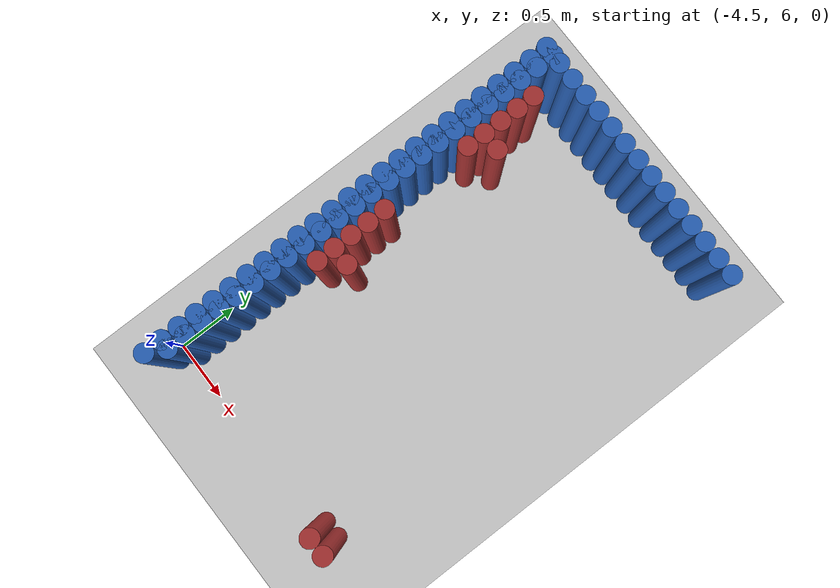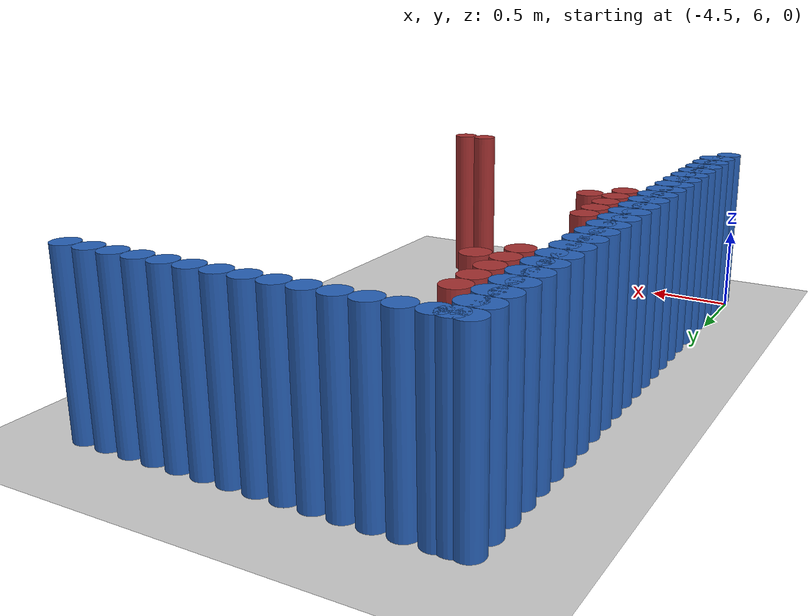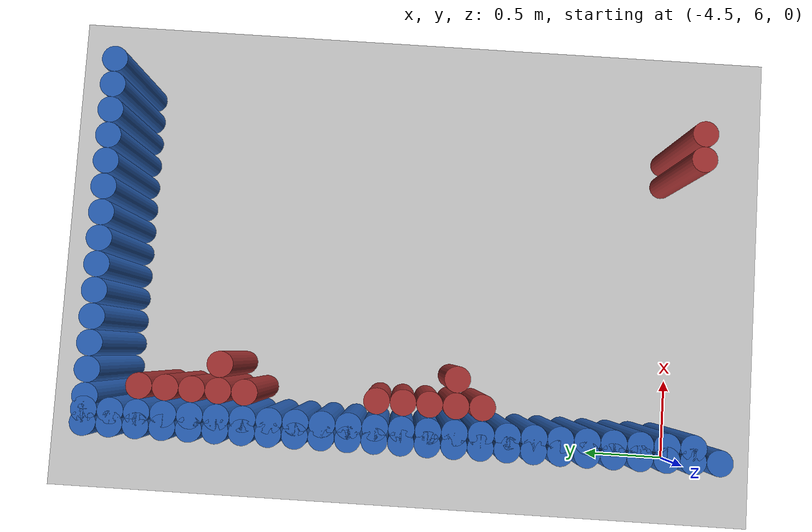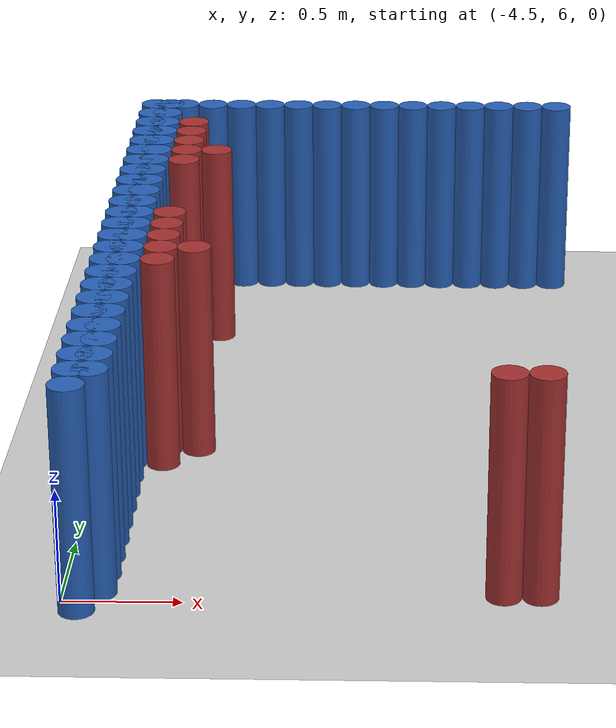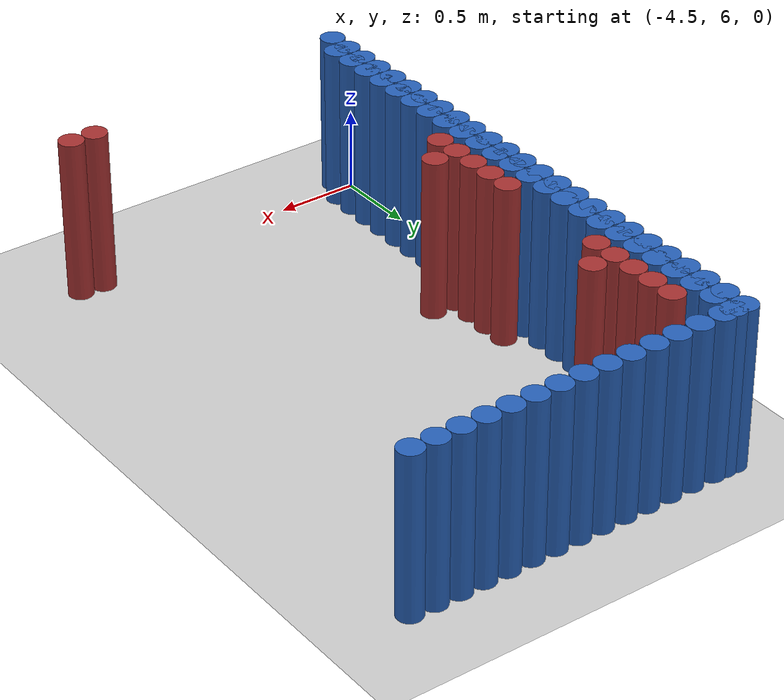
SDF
<sdf version="1.6">
 <world name="barn_world">
  <model name="ground_plane">
   <static>1</static>
   <link name="link">
    <collision name="collision">
     <geometry><plane><normal>0 0 1</normal><size>100 100</size></plane></geometry>
    </collision>
    <visual name="visual">
     <geometry><plane><normal>0 0 1</normal><size>100 100</size></plane></geometry>
     <material>
      <script><uri>file://media/materials/scripts/gazebo.material</uri><name>Gazebo/Grey</name></script>
     </material>
    </visual>
   </link>
  </model>
  <model name="unit_cylinder_132">
   <static>1</static>
   <pose>-4.3500 6.0750 0.5 0 0 0</pose>
   <link name="link">
    <collision name="collision">
     <geometry><cylinder><radius>0.075</radius><length>1</length></cylinder></geometry>
    </collision>
    <visual name="visual">
     <geometry><cylinder><radius>0.075</radius><length>1</length></cylinder></geometry>
     <material><ambient>0.152 0.379 0.72 1</ambient><diffuse>0.152 0.379 0.72 1</diffuse></material>
    </visual>
   </link>
  </model>
  <model name="unit_cylinder_133">
   <static>1</static>
   <pose>-4.3500 6.2250 0.5 0 0 0</pose>
   <link name="link">
    <collision name="collision">
     <geometry><cylinder><radius>0.075</radius><length>1</length></cylinder></geometry>
    </collision>
    <visual name="visual">
     <geometry><cylinder><radius>0.075</radius><length>1</length></cylinder></geometry>
     <material><ambient>0.152 0.379 0.72 1</ambient><diffuse>0.152 0.379 0.72 1</diffuse></material>
    </visual>
   </link>
  </model>
  <model name="unit_cylinder_134">
   <static>1</static>
   <pose>-4.3500 6.3750 0.5 0 0 0</pose>
   <link name="link">
    <collision name="collision">
     <geometry><cylinder><radius>0.075</radius><length>1</length></cylinder></geometry>
    </collision>
    <visual name="visual">
     <geometry><cylinder><radius>0.075</radius><length>1</length></cylinder></geometry>
     <material><ambient>0.152 0.379 0.72 1</ambient><diffuse>0.152 0.379 0.72 1</diffuse></material>
    </visual>
   </link>
  </model>
  <model name="unit_cylinder_135">
   <static>1</static>
   <pose>-4.3500 6.5250 0.5 0 0 0</pose>
   <link name="link">
    <collision name="collision">
     <geometry><cylinder><radius>0.075</radius><length>1</length></cylinder></geometry>
    </collision>
    <visual name="visual">
     <geometry><cylinder><radius>0.075</radius><length>1</length></cylinder></geometry>
     <material><ambient>0.152 0.379 0.72 1</ambient><diffuse>0.152 0.379 0.72 1</diffuse></material>
    </visual>
   </link>
  </model>
  <model name="unit_cylinder_136">
   <static>1</static>
   <pose>-4.3500 6.6750 0.5 0 0 0</pose>
   <link name="link">
    <collision name="collision">
     <geometry><cylinder><radius>0.075</radius><length>1</length></cylinder></geometry>
    </collision>
    <visual name="visual">
     <geometry><cylinder><radius>0.075</radius><length>1</length></cylinder></geometry>
     <material><ambient>0.152 0.379 0.72 1</ambient><diffuse>0.152 0.379 0.72 1</diffuse></material>
    </visual>
   </link>
  </model>
  <model name="unit_cylinder_137">
   <static>1</static>
   <pose>-4.3500 6.8250 0.5 0 0 0</pose>
   <link name="link">
    <collision name="collision">
     <geometry><cylinder><radius>0.075</radius><length>1</length></cylinder></geometry>
    </collision>
    <visual name="visual">
     <geometry><cylinder><radius>0.075</radius><length>1</length></cylinder></geometry>
     <material><ambient>0.152 0.379 0.72 1</ambient><diffuse>0.152 0.379 0.72 1</diffuse></material>
    </visual>
   </link>
  </model>
  <model name="unit_cylinder_138">
   <static>1</static>
   <pose>-4.3500 6.9750 0.5 0 0 0</pose>
   <link name="link">
    <collision name="collision">
     <geometry><cylinder><radius>0.075</radius><length>1</length></cylinder></geometry>
    </collision>
    <visual name="visual">
     <geometry><cylinder><radius>0.075</radius><length>1</length></cylinder></geometry>
     <material><ambient>0.152 0.379 0.72 1</ambient><diffuse>0.152 0.379 0.72 1</diffuse></material>
    </visual>
   </link>
  </model>
  <model name="unit_cylinder_139">
   <static>1</static>
   <pose>-4.3500 7.1250 0.5 0 0 0</pose>
   <link name="link">
    <collision name="collision">
     <geometry><cylinder><radius>0.075</radius><length>1</length></cylinder></geometry>
    </collision>
    <visual name="visual">
     <geometry><cylinder><radius>0.075</radius><length>1</length></cylinder></geometry>
     <material><ambient>0.152 0.379 0.72 1</ambient><diffuse>0.152 0.379 0.72 1</diffuse></material>
    </visual>
   </link>
  </model>
  <model name="unit_cylinder_140">
   <static>1</static>
   <pose>-4.3500 7.2750 0.5 0 0 0</pose>
   <link name="link">
    <collision name="collision">
     <geometry><cylinder><radius>0.075</radius><length>1</length></cylinder></geometry>
    </collision>
    <visual name="visual">
     <geometry><cylinder><radius>0.075</radius><length>1</length></cylinder></geometry>
     <material><ambient>0.152 0.379 0.72 1</ambient><diffuse>0.152 0.379 0.72 1</diffuse></material>
    </visual>
   </link>
  </model>
  <model name="unit_cylinder_141">
   <static>1</static>
   <pose>-4.3500 7.4250 0.5 0 0 0</pose>
   <link name="link">
    <collision name="collision">
     <geometry><cylinder><radius>0.075</radius><length>1</length></cylinder></geometry>
    </collision>
    <visual name="visual">
     <geometry><cylinder><radius>0.075</radius><length>1</length></cylinder></geometry>
     <material><ambient>0.152 0.379 0.72 1</ambient><diffuse>0.152 0.379 0.72 1</diffuse></material>
    </visual>
   </link>
  </model>
  <model name="unit_cylinder_142">
   <static>1</static>
   <pose>-4.3500 7.5750 0.5 0 0 0</pose>
   <link name="link">
    <collision name="collision">
     <geometry><cylinder><radius>0.075</radius><length>1</length></cylinder></geometry>
    </collision>
    <visual name="visual">
     <geometry><cylinder><radius>0.075</radius><length>1</length></cylinder></geometry>
     <material><ambient>0.152 0.379 0.72 1</ambient><diffuse>0.152 0.379 0.72 1</diffuse></material>
    </visual>
   </link>
  </model>
  <model name="unit_cylinder_143">
   <static>1</static>
   <pose>-4.3500 7.7250 0.5 0 0 0</pose>
   <link name="link">
    <collision name="collision">
     <geometry><cylinder><radius>0.075</radius><length>1</length></cylinder></geometry>
    </collision>
    <visual name="visual">
     <geometry><cylinder><radius>0.075</radius><length>1</length></cylinder></geometry>
     <material><ambient>0.152 0.379 0.72 1</ambient><diffuse>0.152 0.379 0.72 1</diffuse></material>
    </visual>
   </link>
  </model>
  <model name="unit_cylinder_144">
   <static>1</static>
   <pose>-4.3500 7.8750 0.5 0 0 0</pose>
   <link name="link">
    <collision name="collision">
     <geometry><cylinder><radius>0.075</radius><length>1</length></cylinder></geometry>
    </collision>
    <visual name="visual">
     <geometry><cylinder><radius>0.075</radius><length>1</length></cylinder></geometry>
     <material><ambient>0.152 0.379 0.72 1</ambient><diffuse>0.152 0.379 0.72 1</diffuse></material>
    </visual>
   </link>
  </model>
  <model name="unit_cylinder_145">
   <static>1</static>
   <pose>-4.3500 8.0250 0.5 0 0 0</pose>
   <link name="link">
    <collision name="collision">
     <geometry><cylinder><radius>0.075</radius><length>1</length></cylinder></geometry>
    </collision>
    <visual name="visual">
     <geometry><cylinder><radius>0.075</radius><length>1</length></cylinder></geometry>
     <material><ambient>0.152 0.379 0.72 1</ambient><diffuse>0.152 0.379 0.72 1</diffuse></material>
    </visual>
   </link>
  </model>
  <model name="unit_cylinder_146">
   <static>1</static>
   <pose>-4.3500 8.1750 0.5 0 0 0</pose>
   <link name="link">
    <collision name="collision">
     <geometry><cylinder><radius>0.075</radius><length>1</length></cylinder></geometry>
    </collision>
    <visual name="visual">
     <geometry><cylinder><radius>0.075</radius><length>1</length></cylinder></geometry>
     <material><ambient>0.152 0.379 0.72 1</ambient><diffuse>0.152 0.379 0.72 1</diffuse></material>
    </visual>
   </link>
  </model>
  <model name="unit_cylinder_147">
   <static>1</static>
   <pose>-4.3500 8.3250 0.5 0 0 0</pose>
   <link name="link">
    <collision name="collision">
     <geometry><cylinder><radius>0.075</radius><length>1</length></cylinder></geometry>
    </collision>
    <visual name="visual">
     <geometry><cylinder><radius>0.075</radius><length>1</length></cylinder></geometry>
     <material><ambient>0.152 0.379 0.72 1</ambient><diffuse>0.152 0.379 0.72 1</diffuse></material>
    </visual>
   </link>
  </model>
  <model name="unit_cylinder_148">
   <static>1</static>
   <pose>-4.3500 8.4750 0.5 0 0 0</pose>
   <link name="link">
    <collision name="collision">
     <geometry><cylinder><radius>0.075</radius><length>1</length></cylinder></geometry>
    </collision>
    <visual name="visual">
     <geometry><cylinder><radius>0.075</radius><length>1</length></cylinder></geometry>
     <material><ambient>0.152 0.379 0.72 1</ambient><diffuse>0.152 0.379 0.72 1</diffuse></material>
    </visual>
   </link>
  </model>
  <model name="unit_cylinder_149">
   <static>1</static>
   <pose>-4.3500 8.6250 0.5 0 0 0</pose>
   <link name="link">
    <collision name="collision">
     <geometry><cylinder><radius>0.075</radius><length>1</length></cylinder></geometry>
    </collision>
    <visual name="visual">
     <geometry><cylinder><radius>0.075</radius><length>1</length></cylinder></geometry>
     <material><ambient>0.152 0.379 0.72 1</ambient><diffuse>0.152 0.379 0.72 1</diffuse></material>
    </visual>
   </link>
  </model>
  <model name="unit_cylinder_150">
   <static>1</static>
   <pose>-4.3500 8.7750 0.5 0 0 0</pose>
   <link name="link">
    <collision name="collision">
     <geometry><cylinder><radius>0.075</radius><length>1</length></cylinder></geometry>
    </collision>
    <visual name="visual">
     <geometry><cylinder><radius>0.075</radius><length>1</length></cylinder></geometry>
     <material><ambient>0.152 0.379 0.72 1</ambient><diffuse>0.152 0.379 0.72 1</diffuse></material>
    </visual>
   </link>
  </model>
  <model name="unit_cylinder_151">
   <static>1</static>
   <pose>-4.3500 8.9250 0.5 0 0 0</pose>
   <link name="link">
    <collision name="collision">
     <geometry><cylinder><radius>0.075</radius><length>1</length></cylinder></geometry>
    </collision>
    <visual name="visual">
     <geometry><cylinder><radius>0.075</radius><length>1</length></cylinder></geometry>
     <material><ambient>0.152 0.379 0.72 1</ambient><diffuse>0.152 0.379 0.72 1</diffuse></material>
    </visual>
   </link>
  </model>
  <model name="unit_cylinder_152">
   <static>1</static>
   <pose>-4.3500 9.0750 0.5 0 0 0</pose>
   <link name="link">
    <collision name="collision">
     <geometry><cylinder><radius>0.075</radius><length>1</length></cylinder></geometry>
    </collision>
    <visual name="visual">
     <geometry><cylinder><radius>0.075</radius><length>1</length></cylinder></geometry>
     <material><ambient>0.152 0.379 0.72 1</ambient><diffuse>0.152 0.379 0.72 1</diffuse></material>
    </visual>
   </link>
  </model>
  <model name="unit_cylinder_153">
   <static>1</static>
   <pose>-4.3500 9.2250 0.5 0 0 0</pose>
   <link name="link">
    <collision name="collision">
     <geometry><cylinder><radius>0.075</radius><length>1</length></cylinder></geometry>
    </collision>
    <visual name="visual">
     <geometry><cylinder><radius>0.075</radius><length>1</length></cylinder></geometry>
     <material><ambient>0.152 0.379 0.72 1</ambient><diffuse>0.152 0.379 0.72 1</diffuse></material>
    </visual>
   </link>
  </model>
  <model name="unit_cylinder_154">
   <static>1</static>
   <pose>-4.3500 9.3750 0.5 0 0 0</pose>
   <link name="link">
    <collision name="collision">
     <geometry><cylinder><radius>0.075</radius><length>1</length></cylinder></geometry>
    </collision>
    <visual name="visual">
     <geometry><cylinder><radius>0.075</radius><length>1</length></cylinder></geometry>
     <material><ambient>0.152 0.379 0.72 1</ambient><diffuse>0.152 0.379 0.72 1</diffuse></material>
    </visual>
   </link>
  </model>
  <model name="unit_cylinder_155">
   <static>1</static>
   <pose>-4.3500 9.5250 0.5 0 0 0</pose>
   <link name="link">
    <collision name="collision">
     <geometry><cylinder><radius>0.075</radius><length>1</length></cylinder></geometry>
    </collision>
    <visual name="visual">
     <geometry><cylinder><radius>0.075</radius><length>1</length></cylinder></geometry>
     <material><ambient>0.152 0.379 0.72 1</ambient><diffuse>0.152 0.379 0.72 1</diffuse></material>
    </visual>
   </link>
  </model>
  <model name="unit_cylinder_157">
   <static>1</static>
   <pose>-4.2000 7.2750 0.5 0 0 0</pose>
   <link name="link">
    <collision name="collision">
     <geometry><cylinder><radius>0.075</radius><length>1</length></cylinder></geometry>
    </collision>
    <visual name="visual">
     <geometry><cylinder><radius>0.075</radius><length>1</length></cylinder></geometry>
     <material><ambient>0.648 0.192 0.192 1</ambient><diffuse>0.648 0.192 0.192 1</diffuse></material>
    </visual>
   </link>
  </model>
  <model name="unit_cylinder_158">
   <static>1</static>
   <pose>-4.2000 7.4250 0.5 0 0 0</pose>
   <link name="link">
    <collision name="collision">
     <geometry><cylinder><radius>0.075</radius><length>1</length></cylinder></geometry>
    </collision>
    <visual name="visual">
     <geometry><cylinder><radius>0.075</radius><length>1</length></cylinder></geometry>
     <material><ambient>0.648 0.192 0.192 1</ambient><diffuse>0.648 0.192 0.192 1</diffuse></material>
    </visual>
   </link>
  </model>
  <model name="unit_cylinder_159">
   <static>1</static>
   <pose>-4.2000 7.5750 0.5 0 0 0</pose>
   <link name="link">
    <collision name="collision">
     <geometry><cylinder><radius>0.075</radius><length>1</length></cylinder></geometry>
    </collision>
    <visual name="visual">
     <geometry><cylinder><radius>0.075</radius><length>1</length></cylinder></geometry>
     <material><ambient>0.648 0.192 0.192 1</ambient><diffuse>0.648 0.192 0.192 1</diffuse></material>
    </visual>
   </link>
  </model>
  <model name="unit_cylinder_160">
   <static>1</static>
   <pose>-4.2000 7.7250 0.5 0 0 0</pose>
   <link name="link">
    <collision name="collision">
     <geometry><cylinder><radius>0.075</radius><length>1</length></cylinder></geometry>
    </collision>
    <visual name="visual">
     <geometry><cylinder><radius>0.075</radius><length>1</length></cylinder></geometry>
     <material><ambient>0.648 0.192 0.192 1</ambient><diffuse>0.648 0.192 0.192 1</diffuse></material>
    </visual>
   </link>
  </model>
  <model name="unit_cylinder_161">
   <static>1</static>
   <pose>-4.2000 7.8750 0.5 0 0 0</pose>
   <link name="link">
    <collision name="collision">
     <geometry><cylinder><radius>0.075</radius><length>1</length></cylinder></geometry>
    </collision>
    <visual name="visual">
     <geometry><cylinder><radius>0.075</radius><length>1</length></cylinder></geometry>
     <material><ambient>0.648 0.192 0.192 1</ambient><diffuse>0.648 0.192 0.192 1</diffuse></material>
    </visual>
   </link>
  </model>
  <model name="unit_cylinder_162">
   <static>1</static>
   <pose>-4.2000 8.6250 0.5 0 0 0</pose>
   <link name="link">
    <collision name="collision">
     <geometry><cylinder><radius>0.075</radius><length>1</length></cylinder></geometry>
    </collision>
    <visual name="visual">
     <geometry><cylinder><radius>0.075</radius><length>1</length></cylinder></geometry>
     <material><ambient>0.648 0.192 0.192 1</ambient><diffuse>0.648 0.192 0.192 1</diffuse></material>
    </visual>
   </link>
  </model>
  <model name="unit_cylinder_163">
   <static>1</static>
   <pose>-4.2000 8.7750 0.5 0 0 0</pose>
   <link name="link">
    <collision name="collision">
     <geometry><cylinder><radius>0.075</radius><length>1</length></cylinder></geometry>
    </collision>
    <visual name="visual">
     <geometry><cylinder><radius>0.075</radius><length>1</length></cylinder></geometry>
     <material><ambient>0.648 0.192 0.192 1</ambient><diffuse>0.648 0.192 0.192 1</diffuse></material>
    </visual>
   </link>
  </model>
  <model name="unit_cylinder_164">
   <static>1</static>
   <pose>-4.2000 8.9250 0.5 0 0 0</pose>
   <link name="link">
    <collision name="collision">
     <geometry><cylinder><radius>0.075</radius><length>1</length></cylinder></geometry>
    </collision>
    <visual name="visual">
     <geometry><cylinder><radius>0.075</radius><length>1</length></cylinder></geometry>
     <material><ambient>0.648 0.192 0.192 1</ambient><diffuse>0.648 0.192 0.192 1</diffuse></material>
    </visual>
   </link>
  </model>
  <model name="unit_cylinder_165">
   <static>1</static>
   <pose>-4.2000 9.0750 0.5 0 0 0</pose>
   <link name="link">
    <collision name="collision">
     <geometry><cylinder><radius>0.075</radius><length>1</length></cylinder></geometry>
    </collision>
    <visual name="visual">
     <geometry><cylinder><radius>0.075</radius><length>1</length></cylinder></geometry>
     <material><ambient>0.648 0.192 0.192 1</ambient><diffuse>0.648 0.192 0.192 1</diffuse></material>
    </visual>
   </link>
  </model>
  <model name="unit_cylinder_166">
   <static>1</static>
   <pose>-4.2000 9.2250 0.5 0 0 0</pose>
   <link name="link">
    <collision name="collision">
     <geometry><cylinder><radius>0.075</radius><length>1</length></cylinder></geometry>
    </collision>
    <visual name="visual">
     <geometry><cylinder><radius>0.075</radius><length>1</length></cylinder></geometry>
     <material><ambient>0.648 0.192 0.192 1</ambient><diffuse>0.648 0.192 0.192 1</diffuse></material>
    </visual>
   </link>
  </model>
  <model name="unit_cylinder_167">
   <static>1</static>
   <pose>-4.0500 7.4250 0.5 0 0 0</pose>
   <link name="link">
    <collision name="collision">
     <geometry><cylinder><radius>0.075</radius><length>1</length></cylinder></geometry>
    </collision>
    <visual name="visual">
     <geometry><cylinder><radius>0.075</radius><length>1</length></cylinder></geometry>
     <material><ambient>0.648 0.192 0.192 1</ambient><diffuse>0.648 0.192 0.192 1</diffuse></material>
    </visual>
   </link>
  </model>
  <model name="unit_cylinder_168">
   <static>1</static>
   <pose>-4.0500 8.7750 0.5 0 0 0</pose>
   <link name="link">
    <collision name="collision">
     <geometry><cylinder><radius>0.075</radius><length>1</length></cylinder></geometry>
    </collision>
    <visual name="visual">
     <geometry><cylinder><radius>0.075</radius><length>1</length></cylinder></geometry>
     <material><ambient>0.648 0.192 0.192 1</ambient><diffuse>0.648 0.192 0.192 1</diffuse></material>
    </visual>
   </link>
  </model>
  <model name="unit_cylinder_173">
   <static>1</static>
   <pose>-2.7000 6.0750 0.5 0 0 0</pose>
   <link name="link">
    <collision name="collision">
     <geometry><cylinder><radius>0.075</radius><length>1</length></cylinder></geometry>
    </collision>
    <visual name="visual">
     <geometry><cylinder><radius>0.075</radius><length>1</length></cylinder></geometry>
     <material><ambient>0.648 0.192 0.192 1</ambient><diffuse>0.648 0.192 0.192 1</diffuse></material>
    </visual>
   </link>
  </model>
  <model name="unit_cylinder_174">
   <static>1</static>
   <pose>-2.5500 6.0750 0.5 0 0 0</pose>
   <link name="link">
    <collision name="collision">
     <geometry><cylinder><radius>0.075</radius><length>1</length></cylinder></geometry>
    </collision>
    <visual name="visual">
     <geometry><cylinder><radius>0.075</radius><length>1</length></cylinder></geometry>
     <material><ambient>0.648 0.192 0.192 1</ambient><diffuse>0.648 0.192 0.192 1</diffuse></material>
    </visual>
   </link>
  </model>
  <model name="unit_cylinder_236">
   <static>1</static>
   <pose>-2.3250 9.5250 0.5 0 0 0</pose>
   <link name="link">
    <collision name="collision">
     <geometry><cylinder><radius>0.075</radius><length>1</length></cylinder></geometry>
    </collision>
    <visual name="visual">
     <geometry><cylinder><radius>0.075</radius><length>1</length></cylinder></geometry>
     <material><ambient>0.152 0.379 0.72 1</ambient><diffuse>0.152 0.379 0.72 1</diffuse></material>
    </visual>
   </link>
  </model>
  <model name="unit_cylinder_237">
   <static>1</static>
   <pose>-2.4750 9.5250 0.5 0 0 0</pose>
   <link name="link">
    <collision name="collision">
     <geometry><cylinder><radius>0.075</radius><length>1</length></cylinder></geometry>
    </collision>
    <visual name="visual">
     <geometry><cylinder><radius>0.075</radius><length>1</length></cylinder></geometry>
     <material><ambient>0.152 0.379 0.72 1</ambient><diffuse>0.152 0.379 0.72 1</diffuse></material>
    </visual>
   </link>
  </model>
  <model name="unit_cylinder_238">
   <static>1</static>
   <pose>-2.6250 9.5250 0.5 0 0 0</pose>
   <link name="link">
    <collision name="collision">
     <geometry><cylinder><radius>0.075</radius><length>1</length></cylinder></geometry>
    </collision>
    <visual name="visual">
     <geometry><cylinder><radius>0.075</radius><length>1</length></cylinder></geometry>
     <material><ambient>0.152 0.379 0.72 1</ambient><diffuse>0.152 0.379 0.72 1</diffuse></material>
    </visual>
   </link>
  </model>
  <model name="unit_cylinder_239">
   <static>1</static>
   <pose>-2.7750 9.5250 0.5 0 0 0</pose>
   <link name="link">
    <collision name="collision">
     <geometry><cylinder><radius>0.075</radius><length>1</length></cylinder></geometry>
    </collision>
    <visual name="visual">
     <geometry><cylinder><radius>0.075</radius><length>1</length></cylinder></geometry>
     <material><ambient>0.152 0.379 0.72 1</ambient><diffuse>0.152 0.379 0.72 1</diffuse></material>
    </visual>
   </link>
  </model>
  <model name="unit_cylinder_240">
   <static>1</static>
   <pose>-2.9250 9.5250 0.5 0 0 0</pose>
   <link name="link">
    <collision name="collision">
     <geometry><cylinder><radius>0.075</radius><length>1</length></cylinder></geometry>
    </collision>
    <visual name="visual">
     <geometry><cylinder><radius>0.075</radius><length>1</length></cylinder></geometry>
     <material><ambient>0.152 0.379 0.72 1</ambient><diffuse>0.152 0.379 0.72 1</diffuse></material>
    </visual>
   </link>
  </model>
  <model name="unit_cylinder_241">
   <static>1</static>
   <pose>-3.0750 9.5250 0.5 0 0 0</pose>
   <link name="link">
    <collision name="collision">
     <geometry><cylinder><radius>0.075</radius><length>1</length></cylinder></geometry>
    </collision>
    <visual name="visual">
     <geometry><cylinder><radius>0.075</radius><length>1</length></cylinder></geometry>
     <material><ambient>0.152 0.379 0.72 1</ambient><diffuse>0.152 0.379 0.72 1</diffuse></material>
    </visual>
   </link>
  </model>
  <model name="unit_cylinder_242">
   <static>1</static>
   <pose>-3.2250 9.5250 0.5 0 0 0</pose>
   <link name="link">
    <collision name="collision">
     <geometry><cylinder><radius>0.075</radius><length>1</length></cylinder></geometry>
    </collision>
    <visual name="visual">
     <geometry><cylinder><radius>0.075</radius><length>1</length></cylinder></geometry>
     <material><ambient>0.152 0.379 0.72 1</ambient><diffuse>0.152 0.379 0.72 1</diffuse></material>
    </visual>
   </link>
  </model>
  <model name="unit_cylinder_243">
   <static>1</static>
   <pose>-3.3750 9.5250 0.5 0 0 0</pose>
   <link name="link">
    <collision name="collision">
     <geometry><cylinder><radius>0.075</radius><length>1</length></cylinder></geometry>
    </collision>
    <visual name="visual">
     <geometry><cylinder><radius>0.075</radius><length>1</length></cylinder></geometry>
     <material><ambient>0.152 0.379 0.72 1</ambient><diffuse>0.152 0.379 0.72 1</diffuse></material>
    </visual>
   </link>
  </model>
  <model name="unit_cylinder_244">
   <static>1</static>
   <pose>-3.5250 9.5250 0.5 0 0 0</pose>
   <link name="link">
    <collision name="collision">
     <geometry><cylinder><radius>0.075</radius><length>1</length></cylinder></geometry>
    </collision>
    <visual name="visual">
     <geometry><cylinder><radius>0.075</radius><length>1</length></cylinder></geometry>
     <material><ambient>0.152 0.379 0.72 1</ambient><diffuse>0.152 0.379 0.72 1</diffuse></material>
    </visual>
   </link>
  </model>
  <model name="unit_cylinder_245">
   <static>1</static>
   <pose>-3.6750 9.5250 0.5 0 0 0</pose>
   <link name="link">
    <collision name="collision">
     <geometry><cylinder><radius>0.075</radius><length>1</length></cylinder></geometry>
    </collision>
    <visual name="visual">
     <geometry><cylinder><radius>0.075</radius><length>1</length></cylinder></geometry>
     <material><ambient>0.152 0.379 0.72 1</ambient><diffuse>0.152 0.379 0.72 1</diffuse></material>
    </visual>
   </link>
  </model>
  <model name="unit_cylinder_246">
   <static>1</static>
   <pose>-3.8250 9.5250 0.5 0 0 0</pose>
   <link name="link">
    <collision name="collision">
     <geometry><cylinder><radius>0.075</radius><length>1</length></cylinder></geometry>
    </collision>
    <visual name="visual">
     <geometry><cylinder><radius>0.075</radius><length>1</length></cylinder></geometry>
     <material><ambient>0.152 0.379 0.72 1</ambient><diffuse>0.152 0.379 0.72 1</diffuse></material>
    </visual>
   </link>
  </model>
  <model name="unit_cylinder_247">
   <static>1</static>
   <pose>-3.9750 9.5250 0.5 0 0 0</pose>
   <link name="link">
    <collision name="collision">
     <geometry><cylinder><radius>0.075</radius><length>1</length></cylinder></geometry>
    </collision>
    <visual name="visual">
     <geometry><cylinder><radius>0.075</radius><length>1</length></cylinder></geometry>
     <material><ambient>0.152 0.379 0.72 1</ambient><diffuse>0.152 0.379 0.72 1</diffuse></material>
    </visual>
   </link>
  </model>
  <model name="unit_cylinder_248">
   <static>1</static>
   <pose>-4.1250 9.5250 0.5 0 0 0</pose>
   <link name="link">
    <collision name="collision">
     <geometry><cylinder><radius>0.075</radius><length>1</length></cylinder></geometry>
    </collision>
    <visual name="visual">
     <geometry><cylinder><radius>0.075</radius><length>1</length></cylinder></geometry>
     <material><ambient>0.152 0.379 0.72 1</ambient><diffuse>0.152 0.379 0.72 1</diffuse></material>
    </visual>
   </link>
  </model>
  <model name="unit_cylinder_249">
   <static>1</static>
   <pose>-4.2750 9.5250 0.5 0 0 0</pose>
   <link name="link">
    <collision name="collision">
     <geometry><cylinder><radius>0.075</radius><length>1</length></cylinder></geometry>
    </collision>
    <visual name="visual">
     <geometry><cylinder><radius>0.075</radius><length>1</length></cylinder></geometry>
     <material><ambient>0.152 0.379 0.72 1</ambient><diffuse>0.152 0.379 0.72 1</diffuse></material>
    </visual>
   </link>
  </model>
  <model name="unit_cylinder_250">
   <static>1</static>
   <pose>-4.4250 9.5250 0.5 0 0 0</pose>
   <link name="link">
    <collision name="collision">
     <geometry><cylinder><radius>0.075</radius><length>1</length></cylinder></geometry>
    </collision>
    <visual name="visual">
     <geometry><cylinder><radius>0.075</radius><length>1</length></cylinder></geometry>
     <material><ambient>0.152 0.379 0.72 1</ambient><diffuse>0.152 0.379 0.72 1</diffuse></material>
    </visual>
   </link>
  </model>
  <model name="unit_cylinder_262">
   <static>1</static>
   <pose>-4.4250 5.9250 0.5 0 0 0</pose>
   <link name="link">
    <collision name="collision">
     <geometry><cylinder><radius>0.075</radius><length>1</length></cylinder></geometry>
    </collision>
    <visual name="visual">
     <geometry><cylinder><radius>0.075</radius><length>1</length></cylinder></geometry>
     <material><ambient>0.152 0.379 0.72 1</ambient><diffuse>0.152 0.379 0.72 1</diffuse></material>
    </visual>
   </link>
  </model>
  <model name="unit_cylinder_264">
   <static>1</static>
   <pose>-4.4250 6.0750 0.5 0 0 0</pose>
   <link name="link">
    <collision name="collision">
     <geometry><cylinder><radius>0.075</radius><length>1</length></cylinder></geometry>
    </collision>
    <visual name="visual">
     <geometry><cylinder><radius>0.075</radius><length>1</length></cylinder></geometry>
     <material><ambient>0.152 0.379 0.72 1</ambient><diffuse>0.152 0.379 0.72 1</diffuse></material>
    </visual>
   </link>
  </model>
  <model name="unit_cylinder_266">
   <static>1</static>
   <pose>-4.4250 6.2250 0.5 0 0 0</pose>
   <link name="link">
    <collision name="collision">
     <geometry><cylinder><radius>0.075</radius><length>1</length></cylinder></geometry>
    </collision>
    <visual name="visual">
     <geometry><cylinder><radius>0.075</radius><length>1</length></cylinder></geometry>
     <material><ambient>0.152 0.379 0.72 1</ambient><diffuse>0.152 0.379 0.72 1</diffuse></material>
    </visual>
   </link>
  </model>
  <model name="unit_cylinder_268">
   <static>1</static>
   <pose>-4.4250 6.3750 0.5 0 0 0</pose>
   <link name="link">
    <collision name="collision">
     <geometry><cylinder><radius>0.075</radius><length>1</length></cylinder></geometry>
    </collision>
    <visual name="visual">
     <geometry><cylinder><radius>0.075</radius><length>1</length></cylinder></geometry>
     <material><ambient>0.152 0.379 0.72 1</ambient><diffuse>0.152 0.379 0.72 1</diffuse></material>
    </visual>
   </link>
  </model>
  <model name="unit_cylinder_270">
   <static>1</static>
   <pose>-4.4250 6.5250 0.5 0 0 0</pose>
   <link name="link">
    <collision name="collision">
     <geometry><cylinder><radius>0.075</radius><length>1</length></cylinder></geometry>
    </collision>
    <visual name="visual">
     <geometry><cylinder><radius>0.075</radius><length>1</length></cylinder></geometry>
     <material><ambient>0.152 0.379 0.72 1</ambient><diffuse>0.152 0.379 0.72 1</diffuse></material>
    </visual>
   </link>
  </model>
  <model name="unit_cylinder_272">
   <static>1</static>
   <pose>-4.4250 6.6750 0.5 0 0 0</pose>
   <link name="link">
    <collision name="collision">
     <geometry><cylinder><radius>0.075</radius><length>1</length></cylinder></geometry>
    </collision>
    <visual name="visual">
     <geometry><cylinder><radius>0.075</radius><length>1</length></cylinder></geometry>
     <material><ambient>0.152 0.379 0.72 1</ambient><diffuse>0.152 0.379 0.72 1</diffuse></material>
    </visual>
   </link>
  </model>
  <model name="unit_cylinder_274">
   <static>1</static>
   <pose>-4.4250 6.8250 0.5 0 0 0</pose>
   <link name="link">
    <collision name="collision">
     <geometry><cylinder><radius>0.075</radius><length>1</length></cylinder></geometry>
    </collision>
    <visual name="visual">
     <geometry><cylinder><radius>0.075</radius><length>1</length></cylinder></geometry>
     <material><ambient>0.152 0.379 0.72 1</ambient><diffuse>0.152 0.379 0.72 1</diffuse></material>
    </visual>
   </link>
  </model>
  <model name="unit_cylinder_276">
   <static>1</static>
   <pose>-4.4250 6.9750 0.5 0 0 0</pose>
   <link name="link">
    <collision name="collision">
     <geometry><cylinder><radius>0.075</radius><length>1</length></cylinder></geometry>
    </collision>
    <visual name="visual">
     <geometry><cylinder><radius>0.075</radius><length>1</length></cylinder></geometry>
     <material><ambient>0.152 0.379 0.72 1</ambient><diffuse>0.152 0.379 0.72 1</diffuse></material>
    </visual>
   </link>
  </model>
  <model name="unit_cylinder_278">
   <static>1</static>
   <pose>-4.4250 7.1250 0.5 0 0 0</pose>
   <link name="link">
    <collision name="collision">
     <geometry><cylinder><radius>0.075</radius><length>1</length></cylinder></geometry>
    </collision>
    <visual name="visual">
     <geometry><cylinder><radius>0.075</radius><length>1</length></cylinder></geometry>
     <material><ambient>0.152 0.379 0.72 1</ambient><diffuse>0.152 0.379 0.72 1</diffuse></material>
    </visual>
   </link>
  </model>
  <model name="unit_cylinder_280">
   <static>1</static>
   <pose>-4.4250 7.2750 0.5 0 0 0</pose>
   <link name="link">
    <collision name="collision">
     <geometry><cylinder><radius>0.075</radius><length>1</length></cylinder></geometry>
    </collision>
    <visual name="visual">
     <geometry><cylinder><radius>0.075</radius><length>1</length></cylinder></geometry>
     <material><ambient>0.152 0.379 0.72 1</ambient><diffuse>0.152 0.379 0.72 1</diffuse></material>
    </visual>
   </link>
  </model>
  <model name="unit_cylinder_282">
   <static>1</static>
   <pose>-4.4250 7.4250 0.5 0 0 0</pose>
   <link name="link">
    <collision name="collision">
     <geometry><cylinder><radius>0.075</radius><length>1</length></cylinder></geometry>
    </collision>
    <visual name="visual">
     <geometry><cylinder><radius>0.075</radius><length>1</length></cylinder></geometry>
     <material><ambient>0.152 0.379 0.72 1</ambient><diffuse>0.152 0.379 0.72 1</diffuse></material>
    </visual>
   </link>
  </model>
  <model name="unit_cylinder_284">
   <static>1</static>
   <pose>-4.4250 7.5750 0.5 0 0 0</pose>
   <link name="link">
    <collision name="collision">
     <geometry><cylinder><radius>0.075</radius><length>1</length></cylinder></geometry>
    </collision>
    <visual name="visual">
     <geometry><cylinder><radius>0.075</radius><length>1</length></cylinder></geometry>
     <material><ambient>0.152 0.379 0.72 1</ambient><diffuse>0.152 0.379 0.72 1</diffuse></material>
    </visual>
   </link>
  </model>
  <model name="unit_cylinder_286">
   <static>1</static>
   <pose>-4.4250 7.7250 0.5 0 0 0</pose>
   <link name="link">
    <collision name="collision">
     <geometry><cylinder><radius>0.075</radius><length>1</length></cylinder></geometry>
    </collision>
    <visual name="visual">
     <geometry><cylinder><radius>0.075</radius><length>1</length></cylinder></geometry>
     <material><ambient>0.152 0.379 0.72 1</ambient><diffuse>0.152 0.379 0.72 1</diffuse></material>
    </visual>
   </link>
  </model>
  <model name="unit_cylinder_288">
   <static>1</static>
   <pose>-4.4250 7.8750 0.5 0 0 0</pose>
   <link name="link">
    <collision name="collision">
     <geometry><cylinder><radius>0.075</radius><length>1</length></cylinder></geometry>
    </collision>
    <visual name="visual">
     <geometry><cylinder><radius>0.075</radius><length>1</length></cylinder></geometry>
     <material><ambient>0.152 0.379 0.72 1</ambient><diffuse>0.152 0.379 0.72 1</diffuse></material>
    </visual>
   </link>
  </model>
  <model name="unit_cylinder_290">
   <static>1</static>
   <pose>-4.4250 8.0250 0.5 0 0 0</pose>
   <link name="link">
    <collision name="collision">
     <geometry><cylinder><radius>0.075</radius><length>1</length></cylinder></geometry>
    </collision>
    <visual name="visual">
     <geometry><cylinder><radius>0.075</radius><length>1</length></cylinder></geometry>
     <material><ambient>0.152 0.379 0.72 1</ambient><diffuse>0.152 0.379 0.72 1</diffuse></material>
    </visual>
   </link>
  </model>
  <model name="unit_cylinder_292">
   <static>1</static>
   <pose>-4.4250 8.1750 0.5 0 0 0</pose>
   <link name="link">
    <collision name="collision">
     <geometry><cylinder><radius>0.075</radius><length>1</length></cylinder></geometry>
    </collision>
    <visual name="visual">
     <geometry><cylinder><radius>0.075</radius><length>1</length></cylinder></geometry>
     <material><ambient>0.152 0.379 0.72 1</ambient><diffuse>0.152 0.379 0.72 1</diffuse></material>
    </visual>
   </link>
  </model>
  <model name="unit_cylinder_294">
   <static>1</static>
   <pose>-4.4250 8.3250 0.5 0 0 0</pose>
   <link name="link">
    <collision name="collision">
     <geometry><cylinder><radius>0.075</radius><length>1</length></cylinder></geometry>
    </collision>
    <visual name="visual">
     <geometry><cylinder><radius>0.075</radius><length>1</length></cylinder></geometry>
     <material><ambient>0.152 0.379 0.72 1</ambient><diffuse>0.152 0.379 0.72 1</diffuse></material>
    </visual>
   </link>
  </model>
  <model name="unit_cylinder_296">
   <static>1</static>
   <pose>-4.4250 8.4750 0.5 0 0 0</pose>
   <link name="link">
    <collision name="collision">
     <geometry><cylinder><radius>0.075</radius><length>1</length></cylinder></geometry>
    </collision>
    <visual name="visual">
     <geometry><cylinder><radius>0.075</radius><length>1</length></cylinder></geometry>
     <material><ambient>0.152 0.379 0.72 1</ambient><diffuse>0.152 0.379 0.72 1</diffuse></material>
    </visual>
   </link>
  </model>
  <model name="unit_cylinder_298">
   <static>1</static>
   <pose>-4.4250 8.6250 0.5 0 0 0</pose>
   <link name="link">
    <collision name="collision">
     <geometry><cylinder><radius>0.075</radius><length>1</length></cylinder></geometry>
    </collision>
    <visual name="visual">
     <geometry><cylinder><radius>0.075</radius><length>1</length></cylinder></geometry>
     <material><ambient>0.152 0.379 0.72 1</ambient><diffuse>0.152 0.379 0.72 1</diffuse></material>
    </visual>
   </link>
  </model>
  <model name="unit_cylinder_300">
   <static>1</static>
   <pose>-4.4250 8.7750 0.5 0 0 0</pose>
   <link name="link">
    <collision name="collision">
     <geometry><cylinder><radius>0.075</radius><length>1</length></cylinder></geometry>
    </collision>
    <visual name="visual">
     <geometry><cylinder><radius>0.075</radius><length>1</length></cylinder></geometry>
     <material><ambient>0.152 0.379 0.72 1</ambient><diffuse>0.152 0.379 0.72 1</diffuse></material>
    </visual>
   </link>
  </model>
  <model name="unit_cylinder_302">
   <static>1</static>
   <pose>-4.4250 8.9250 0.5 0 0 0</pose>
   <link name="link">
    <collision name="collision">
     <geometry><cylinder><radius>0.075</radius><length>1</length></cylinder></geometry>
    </collision>
    <visual name="visual">
     <geometry><cylinder><radius>0.075</radius><length>1</length></cylinder></geometry>
     <material><ambient>0.152 0.379 0.72 1</ambient><diffuse>0.152 0.379 0.72 1</diffuse></material>
    </visual>
   </link>
  </model>
  <model name="unit_cylinder_304">
   <static>1</static>
   <pose>-4.4250 9.0750 0.5 0 0 0</pose>
   <link name="link">
    <collision name="collision">
     <geometry><cylinder><radius>0.075</radius><length>1</length></cylinder></geometry>
    </collision>
    <visual name="visual">
     <geometry><cylinder><radius>0.075</radius><length>1</length></cylinder></geometry>
     <material><ambient>0.152 0.379 0.72 1</ambient><diffuse>0.152 0.379 0.72 1</diffuse></material>
    </visual>
   </link>
  </model>
  <model name="unit_cylinder_306">
   <static>1</static>
   <pose>-4.4250 9.2250 0.5 0 0 0</pose>
   <link name="link">
    <collision name="collision">
     <geometry><cylinder><radius>0.075</radius><length>1</length></cylinder></geometry>
    </collision>
    <visual name="visual">
     <geometry><cylinder><radius>0.075</radius><length>1</length></cylinder></geometry>
     <material><ambient>0.152 0.379 0.72 1</ambient><diffuse>0.152 0.379 0.72 1</diffuse></material>
    </visual>
   </link>
  </model>
  <model name="unit_cylinder_308">
   <static>1</static>
   <pose>-4.4250 9.3750 0.5 0 0 0</pose>
   <link name="link">
    <collision name="collision">
     <geometry><cylinder><radius>0.075</radius><length>1</length></cylinder></geometry>
    </collision>
    <visual name="visual">
     <geometry><cylinder><radius>0.075</radius><length>1</length></cylinder></geometry>
     <material><ambient>0.152 0.379 0.72 1</ambient><diffuse>0.152 0.379 0.72 1</diffuse></material>
    </visual>
   </link>
  </model>
 </world>
</sdf>
